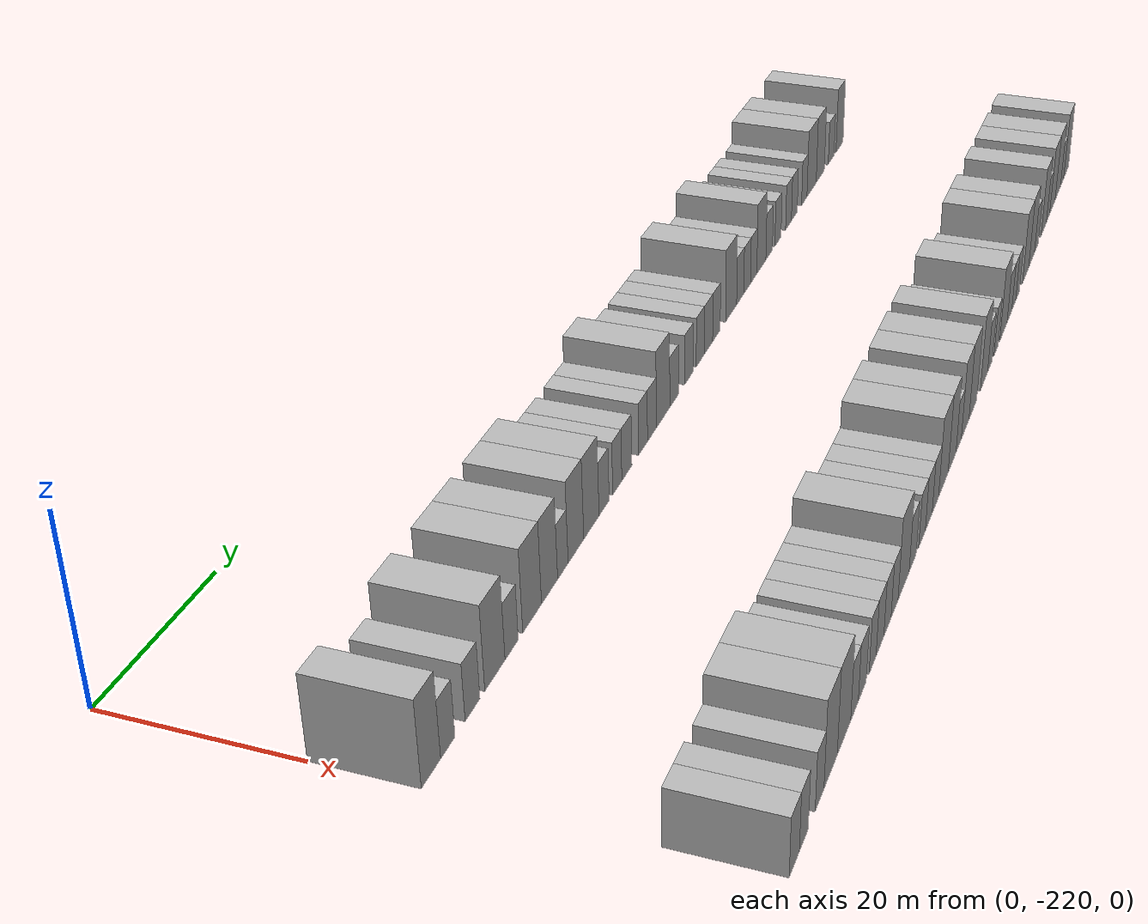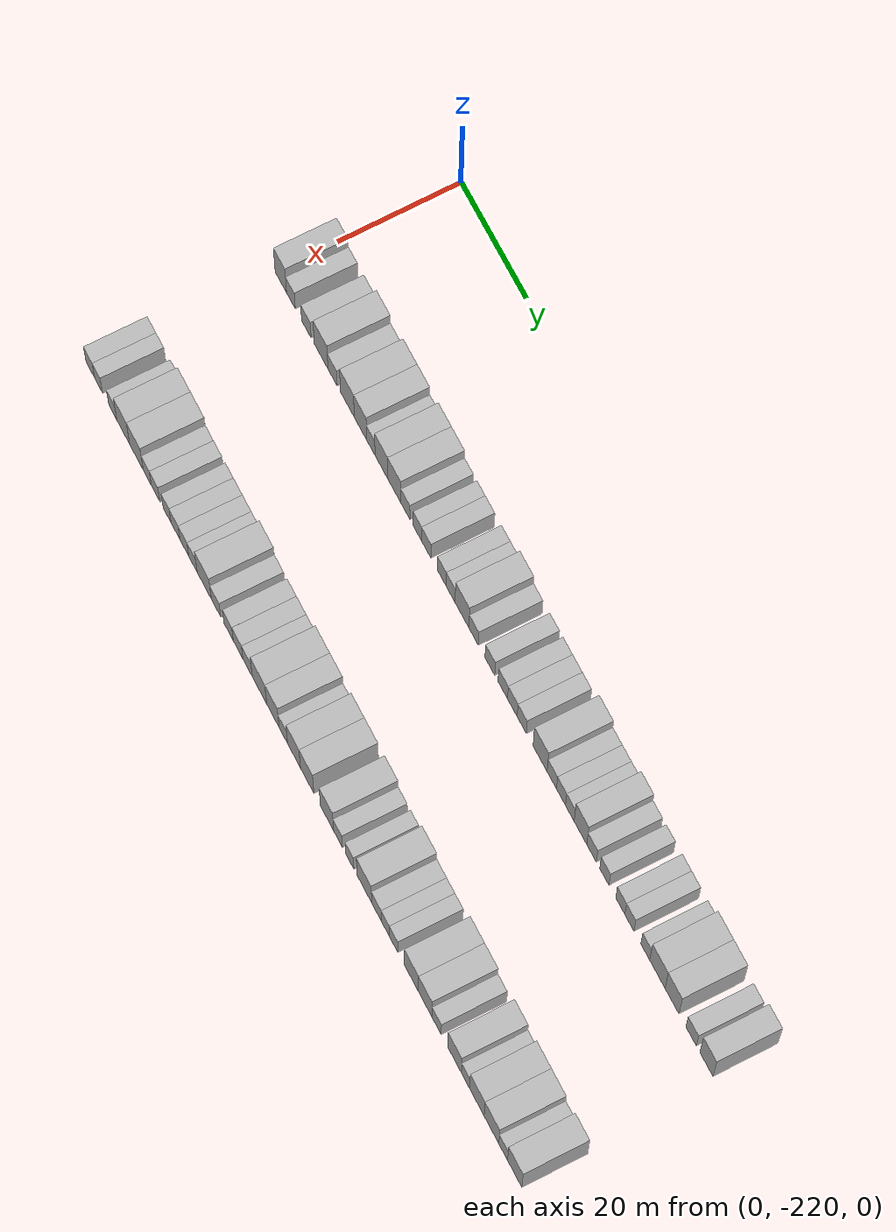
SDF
<sdf version="1.6">
 <world name="default">
  <model name="building_1">
   <static>1</static>
   <pose>25.0000 -218.1999 0 0.000000 0.000000 0.000000</pose>
   <link name="link">
    <pose>0 0 4.50 0 0 0</pose>
    <collision name="collision"><geometry><box><size>10.0000 3.6002 9.0000</size></box></geometry></collision>
    <visual name="visual">
     <cast_shadows>0</cast_shadows>
     <geometry><box><size>10.0000 3.6002 9.0000</size></box></geometry>
     <material>
      <script>
       <uri>model://HANNAS_wall/materials/scripts</uri>
       <uri>model://HANNAS_wall/materials/textures</uri>
       <name>vrc/HANNAS_wall</name>
      </script>
     </material>
    </visual>
   </link>
  </model>
  <model name="building_2">
   <static>1</static>
   <pose>25.0000 -215.0210 0 0.000000 0.000000 0.000000</pose>
   <link name="link">
    <pose>0 0 3.00 0 0 0</pose>
    <collision name="collision"><geometry><box><size>10.0000 2.7577 6.0000</size></box></geometry></collision>
    <visual name="visual">
     <cast_shadows>0</cast_shadows>
     <geometry><box><size>10.0000 2.7577 6.0000</size></box></geometry>
     <material>
      <script>
       <uri>model://HANNAS_wall/materials/scripts</uri>
       <uri>model://HANNAS_wall/materials/textures</uri>
       <name>vrc/HANNAS_wall</name>
      </script>
     </material>
    </visual>
   </link>
  </model>
  <model name="building_3">
   <static>1</static>
   <pose>25.0000 -210.1481 0 0.000000 0.000000 0.000000</pose>
   <link name="link">
    <pose>0 0 3.00 0 0 0</pose>
    <collision name="collision"><geometry><box><size>10.0000 2.9882 6.0000</size></box></geometry></collision>
    <visual name="visual">
     <cast_shadows>0</cast_shadows>
     <geometry><box><size>10.0000 2.9882 6.0000</size></box></geometry>
     <material>
      <script>
       <uri>model://HANNAS_wall/materials/scripts</uri>
       <uri>model://HANNAS_wall/materials/textures</uri>
       <name>vrc/HANNAS_wall</name>
      </script>
     </material>
    </visual>
   </link>
  </model>
  <model name="building_4">
   <static>1</static>
   <pose>25.0000 -205.5099 0 0.000000 0.000000 0.000000</pose>
   <link name="link">
    <pose>0 0 4.50 0 0 0</pose>
    <collision name="collision"><geometry><box><size>10.0000 4.2882 9.0000</size></box></geometry></collision>
    <visual name="visual">
     <cast_shadows>0</cast_shadows>
     <geometry><box><size>10.0000 4.2882 9.0000</size></box></geometry>
     <material>
      <script>
       <uri>model://HANNAS_wall/materials/scripts</uri>
       <uri>model://HANNAS_wall/materials/textures</uri>
       <name>vrc/HANNAS_wall</name>
      </script>
     </material>
    </visual>
   </link>
  </model>
  <model name="building_5">
   <static>1</static>
   <pose>25.0000 -201.9123 0 0.000000 0.000000 0.000000</pose>
   <link name="link">
    <pose>0 0 3.00 0 0 0</pose>
    <collision name="collision"><geometry><box><size>10.0000 2.9070 6.0000</size></box></geometry></collision>
    <visual name="visual">
     <cast_shadows>0</cast_shadows>
     <geometry><box><size>10.0000 2.9070 6.0000</size></box></geometry>
     <material>
      <script>
       <uri>model://HANNAS_wall/materials/scripts</uri>
       <uri>model://HANNAS_wall/materials/textures</uri>
       <name>vrc/HANNAS_wall</name>
      </script>
     </material>
    </visual>
   </link>
  </model>
  <model name="building_6">
   <static>1</static>
   <pose>25.0000 -197.2956 0 0.000000 0.000000 0.000000</pose>
   <link name="link">
    <pose>0 0 4.50 0 0 0</pose>
    <collision name="collision"><geometry><box><size>10.0000 4.3263 9.0000</size></box></geometry></collision>
    <visual name="visual">
     <cast_shadows>0</cast_shadows>
     <geometry><box><size>10.0000 4.3263 9.0000</size></box></geometry>
     <material>
      <script>
       <uri>model://HANNAS_wall/materials/scripts</uri>
       <uri>model://HANNAS_wall/materials/textures</uri>
       <name>vrc/HANNAS_wall</name>
      </script>
     </material>
    </visual>
   </link>
  </model>
  <model name="building_7">
   <static>1</static>
   <pose>25.0000 -193.2080 0 0.000000 0.000000 0.000000</pose>
   <link name="link">
    <pose>0 0 4.50 0 0 0</pose>
    <collision name="collision"><geometry><box><size>10.0000 3.8490 9.0000</size></box></geometry></collision>
    <visual name="visual">
     <cast_shadows>0</cast_shadows>
     <geometry><box><size>10.0000 3.8490 9.0000</size></box></geometry>
     <material>
      <script>
       <uri>model://HANNAS_wall/materials/scripts</uri>
       <uri>model://HANNAS_wall/materials/textures</uri>
       <name>vrc/HANNAS_wall</name>
      </script>
     </material>
    </visual>
   </link>
  </model>
  <model name="building_8">
   <static>1</static>
   <pose>25.0000 -189.9896 0 0.000000 0.000000 0.000000</pose>
   <link name="link">
    <pose>0 0 3.00 0 0 0</pose>
    <collision name="collision"><geometry><box><size>10.0000 2.5877 6.0000</size></box></geometry></collision>
    <visual name="visual">
     <cast_shadows>0</cast_shadows>
     <geometry><box><size>10.0000 2.5877 6.0000</size></box></geometry>
     <material>
      <script>
       <uri>model://HANNAS_wall/materials/scripts</uri>
       <uri>model://HANNAS_wall/materials/textures</uri>
       <name>vrc/HANNAS_wall</name>
      </script>
     </material>
    </visual>
   </link>
  </model>
  <model name="building_9">
   <static>1</static>
   <pose>25.0000 -186.7082 0 0.000000 0.000000 0.000000</pose>
   <link name="link">
    <pose>0 0 4.50 0 0 0</pose>
    <collision name="collision"><geometry><box><size>10.0000 3.9751 9.0000</size></box></geometry></collision>
    <visual name="visual">
     <cast_shadows>0</cast_shadows>
     <geometry><box><size>10.0000 3.9751 9.0000</size></box></geometry>
     <material>
      <script>
       <uri>model://HANNAS_wall/materials/scripts</uri>
       <uri>model://HANNAS_wall/materials/textures</uri>
       <name>vrc/HANNAS_wall</name>
      </script>
     </material>
    </visual>
   </link>
  </model>
  <model name="building_10">
   <static>1</static>
   <pose>25.0000 -182.7124 0 0.000000 0.000000 0.000000</pose>
   <link name="link">
    <pose>0 0 4.50 0 0 0</pose>
    <collision name="collision"><geometry><box><size>10.0000 4.0163 9.0000</size></box></geometry></collision>
    <visual name="visual">
     <cast_shadows>0</cast_shadows>
     <geometry><box><size>10.0000 4.0163 9.0000</size></box></geometry>
     <material>
      <script>
       <uri>model://HANNAS_wall/materials/scripts</uri>
       <uri>model://HANNAS_wall/materials/textures</uri>
       <name>vrc/HANNAS_wall</name>
      </script>
     </material>
    </visual>
   </link>
  </model>
  <model name="building_11">
   <static>1</static>
   <pose>25.0000 -179.3322 0 0.000000 0.000000 0.000000</pose>
   <link name="link">
    <pose>0 0 3.00 0 0 0</pose>
    <collision name="collision"><geometry><box><size>10.0000 2.7441 6.0000</size></box></geometry></collision>
    <visual name="visual">
     <cast_shadows>0</cast_shadows>
     <geometry><box><size>10.0000 2.7441 6.0000</size></box></geometry>
     <material>
      <script>
       <uri>model://HANNAS_wall/materials/scripts</uri>
       <uri>model://HANNAS_wall/materials/textures</uri>
       <name>vrc/HANNAS_wall</name>
      </script>
     </material>
    </visual>
   </link>
  </model>
  <model name="building_12">
   <static>1</static>
   <pose>25.0000 -175.6917 0 0.000000 0.000000 0.000000</pose>
   <link name="link">
    <pose>0 0 3.00 0 0 0</pose>
    <collision name="collision"><geometry><box><size>10.0000 2.5370 6.0000</size></box></geometry></collision>
    <visual name="visual">
     <cast_shadows>0</cast_shadows>
     <geometry><box><size>10.0000 2.5370 6.0000</size></box></geometry>
     <material>
      <script>
       <uri>model://HANNAS_wall/materials/scripts</uri>
       <uri>model://HANNAS_wall/materials/textures</uri>
       <name>vrc/HANNAS_wall</name>
      </script>
     </material>
    </visual>
   </link>
  </model>
  <model name="building_13">
   <static>1</static>
   <pose>25.0000 -172.9795 0 0.000000 0.000000 0.000000</pose>
   <link name="link">
    <pose>0 0 3.00 0 0 0</pose>
    <collision name="collision"><geometry><box><size>10.0000 2.8872 6.0000</size></box></geometry></collision>
    <visual name="visual">
     <cast_shadows>0</cast_shadows>
     <geometry><box><size>10.0000 2.8872 6.0000</size></box></geometry>
     <material>
      <script>
       <uri>model://HANNAS_wall/materials/scripts</uri>
       <uri>model://HANNAS_wall/materials/textures</uri>
       <name>vrc/HANNAS_wall</name>
      </script>
     </material>
    </visual>
   </link>
  </model>
  <model name="building_14">
   <static>1</static>
   <pose>25.0000 -168.2196 0 0.000000 0.000000 0.000000</pose>
   <link name="link">
    <pose>0 0 3.00 0 0 0</pose>
    <collision name="collision"><geometry><box><size>10.0000 2.6327 6.0000</size></box></geometry></collision>
    <visual name="visual">
     <cast_shadows>0</cast_shadows>
     <geometry><box><size>10.0000 2.6327 6.0000</size></box></geometry>
     <material>
      <script>
       <uri>model://HANNAS_wall/materials/scripts</uri>
       <uri>model://HANNAS_wall/materials/textures</uri>
       <name>vrc/HANNAS_wall</name>
      </script>
     </material>
    </visual>
   </link>
  </model>
  <model name="building_15">
   <static>1</static>
   <pose>25.0000 -165.5320 0 0.000000 0.000000 0.000000</pose>
   <link name="link">
    <pose>0 0 3.00 0 0 0</pose>
    <collision name="collision"><geometry><box><size>10.0000 2.7424 6.0000</size></box></geometry></collision>
    <visual name="visual">
     <cast_shadows>0</cast_shadows>
     <geometry><box><size>10.0000 2.7424 6.0000</size></box></geometry>
     <material>
      <script>
       <uri>model://HANNAS_wall/materials/scripts</uri>
       <uri>model://HANNAS_wall/materials/textures</uri>
       <name>vrc/HANNAS_wall</name>
      </script>
     </material>
    </visual>
   </link>
  </model>
  <model name="building_16">
   <static>1</static>
   <pose>25.0000 -162.0608 0 0.000000 0.000000 0.000000</pose>
   <link name="link">
    <pose>0 0 4.50 0 0 0</pose>
    <collision name="collision"><geometry><box><size>10.0000 4.2000 9.0000</size></box></geometry></collision>
    <visual name="visual">
     <cast_shadows>0</cast_shadows>
     <geometry><box><size>10.0000 4.2000 9.0000</size></box></geometry>
     <material>
      <script>
       <uri>model://HANNAS_wall/materials/scripts</uri>
       <uri>model://HANNAS_wall/materials/textures</uri>
       <name>vrc/HANNAS_wall</name>
      </script>
     </material>
    </visual>
   </link>
  </model>
  <model name="building_17">
   <static>1</static>
   <pose>25.0000 -158.5487 0 0.000000 0.000000 0.000000</pose>
   <link name="link">
    <pose>0 0 3.00 0 0 0</pose>
    <collision name="collision"><geometry><box><size>10.0000 2.8243 6.0000</size></box></geometry></collision>
    <visual name="visual">
     <cast_shadows>0</cast_shadows>
     <geometry><box><size>10.0000 2.8243 6.0000</size></box></geometry>
     <material>
      <script>
       <uri>model://HANNAS_wall/materials/scripts</uri>
       <uri>model://HANNAS_wall/materials/textures</uri>
       <name>vrc/HANNAS_wall</name>
      </script>
     </material>
    </visual>
   </link>
  </model>
  <model name="building_18">
   <static>1</static>
   <pose>25.0000 -153.6784 0 0.000000 0.000000 0.000000</pose>
   <link name="link">
    <pose>0 0 3.00 0 0 0</pose>
    <collision name="collision"><geometry><box><size>10.0000 2.9164 6.0000</size></box></geometry></collision>
    <visual name="visual">
     <cast_shadows>0</cast_shadows>
     <geometry><box><size>10.0000 2.9164 6.0000</size></box></geometry>
     <material>
      <script>
       <uri>model://HANNAS_wall/materials/scripts</uri>
       <uri>model://HANNAS_wall/materials/textures</uri>
       <name>vrc/HANNAS_wall</name>
      </script>
     </material>
    </visual>
   </link>
  </model>
  <model name="building_19">
   <static>1</static>
   <pose>25.0000 -149.7978 0 0.000000 0.000000 0.000000</pose>
   <link name="link">
    <pose>0 0 3.00 0 0 0</pose>
    <collision name="collision"><geometry><box><size>10.0000 2.8447 6.0000</size></box></geometry></collision>
    <visual name="visual">
     <cast_shadows>0</cast_shadows>
     <geometry><box><size>10.0000 2.8447 6.0000</size></box></geometry>
     <material>
      <script>
       <uri>model://HANNAS_wall/materials/scripts</uri>
       <uri>model://HANNAS_wall/materials/textures</uri>
       <name>vrc/HANNAS_wall</name>
      </script>
     </material>
    </visual>
   </link>
  </model>
  <model name="building_20">
   <static>1</static>
   <pose>25.0000 -146.9316 0 0.000000 0.000000 0.000000</pose>
   <link name="link">
    <pose>0 0 3.00 0 0 0</pose>
    <collision name="collision"><geometry><box><size>10.0000 2.8878 6.0000</size></box></geometry></collision>
    <visual name="visual">
     <cast_shadows>0</cast_shadows>
     <geometry><box><size>10.0000 2.8878 6.0000</size></box></geometry>
     <material>
      <script>
       <uri>model://HANNAS_wall/materials/scripts</uri>
       <uri>model://HANNAS_wall/materials/textures</uri>
       <name>vrc/HANNAS_wall</name>
      </script>
     </material>
    </visual>
   </link>
  </model>
  <model name="building_21">
   <static>1</static>
   <pose>25.0000 -144.1135 0 0.000000 0.000000 0.000000</pose>
   <link name="link">
    <pose>0 0 3.00 0 0 0</pose>
    <collision name="collision"><geometry><box><size>10.0000 2.7484 6.0000</size></box></geometry></collision>
    <visual name="visual">
     <cast_shadows>0</cast_shadows>
     <geometry><box><size>10.0000 2.7484 6.0000</size></box></geometry>
     <material>
      <script>
       <uri>model://HANNAS_wall/materials/scripts</uri>
       <uri>model://HANNAS_wall/materials/textures</uri>
       <name>vrc/HANNAS_wall</name>
      </script>
     </material>
    </visual>
   </link>
  </model>
  <model name="building_22">
   <static>1</static>
   <pose>25.0000 -138.6592 0 0.000000 0.000000 0.000000</pose>
   <link name="link">
    <pose>0 0 4.50 0 0 0</pose>
    <collision name="collision"><geometry><box><size>10.0000 4.1602 9.0000</size></box></geometry></collision>
    <visual name="visual">
     <cast_shadows>0</cast_shadows>
     <geometry><box><size>10.0000 4.1602 9.0000</size></box></geometry>
     <material>
      <script>
       <uri>model://HANNAS_wall/materials/scripts</uri>
       <uri>model://HANNAS_wall/materials/textures</uri>
       <name>vrc/HANNAS_wall</name>
      </script>
     </material>
    </visual>
   </link>
  </model>
  <model name="building_23">
   <static>1</static>
   <pose>25.0000 -135.1899 0 0.000000 0.000000 0.000000</pose>
   <link name="link">
    <pose>0 0 3.00 0 0 0</pose>
    <collision name="collision"><geometry><box><size>10.0000 2.7784 6.0000</size></box></geometry></collision>
    <visual name="visual">
     <cast_shadows>0</cast_shadows>
     <geometry><box><size>10.0000 2.7784 6.0000</size></box></geometry>
     <material>
      <script>
       <uri>model://HANNAS_wall/materials/scripts</uri>
       <uri>model://HANNAS_wall/materials/textures</uri>
       <name>vrc/HANNAS_wall</name>
      </script>
     </material>
    </visual>
   </link>
  </model>
  <model name="building_24">
   <static>1</static>
   <pose>25.0000 -132.4624 0 0.000000 0.000000 0.000000</pose>
   <link name="link">
    <pose>0 0 3.00 0 0 0</pose>
    <collision name="collision"><geometry><box><size>10.0000 2.6766 6.0000</size></box></geometry></collision>
    <visual name="visual">
     <cast_shadows>0</cast_shadows>
     <geometry><box><size>10.0000 2.6766 6.0000</size></box></geometry>
     <material>
      <script>
       <uri>model://HANNAS_wall/materials/scripts</uri>
       <uri>model://HANNAS_wall/materials/textures</uri>
       <name>vrc/HANNAS_wall</name>
      </script>
     </material>
    </visual>
   </link>
  </model>
  <model name="building_25">
   <static>1</static>
   <pose>25.0000 -129.8567 0 0.000000 0.000000 0.000000</pose>
   <link name="link">
    <pose>0 0 3.00 0 0 0</pose>
    <collision name="collision"><geometry><box><size>10.0000 2.5349 6.0000</size></box></geometry></collision>
    <visual name="visual">
     <cast_shadows>0</cast_shadows>
     <geometry><box><size>10.0000 2.5349 6.0000</size></box></geometry>
     <material>
      <script>
       <uri>model://HANNAS_wall/materials/scripts</uri>
       <uri>model://HANNAS_wall/materials/textures</uri>
       <name>vrc/HANNAS_wall</name>
      </script>
     </material>
    </visual>
   </link>
  </model>
  <model name="building_26">
   <static>1</static>
   <pose>25.0000 -126.7291 0 0.000000 0.000000 0.000000</pose>
   <link name="link">
    <pose>0 0 4.50 0 0 0</pose>
    <collision name="collision"><geometry><box><size>10.0000 3.7203 9.0000</size></box></geometry></collision>
    <visual name="visual">
     <cast_shadows>0</cast_shadows>
     <geometry><box><size>10.0000 3.7203 9.0000</size></box></geometry>
     <material>
      <script>
       <uri>model://HANNAS_wall/materials/scripts</uri>
       <uri>model://HANNAS_wall/materials/textures</uri>
       <name>vrc/HANNAS_wall</name>
      </script>
     </material>
    </visual>
   </link>
  </model>
  <model name="building_27">
   <static>1</static>
   <pose>25.0000 -123.4725 0 0.000000 0.000000 0.000000</pose>
   <link name="link">
    <pose>0 0 3.00 0 0 0</pose>
    <collision name="collision"><geometry><box><size>10.0000 2.7929 6.0000</size></box></geometry></collision>
    <visual name="visual">
     <cast_shadows>0</cast_shadows>
     <geometry><box><size>10.0000 2.7929 6.0000</size></box></geometry>
     <material>
      <script>
       <uri>model://HANNAS_wall/materials/scripts</uri>
       <uri>model://HANNAS_wall/materials/textures</uri>
       <name>vrc/HANNAS_wall</name>
      </script>
     </material>
    </visual>
   </link>
  </model>
  <model name="building_28">
   <static>1</static>
   <pose>25.0000 -119.7247 0 0.000000 0.000000 0.000000</pose>
   <link name="link">
    <pose>0 0 3.00 0 0 0</pose>
    <collision name="collision"><geometry><box><size>10.0000 2.7026 6.0000</size></box></geometry></collision>
    <visual name="visual">
     <cast_shadows>0</cast_shadows>
     <geometry><box><size>10.0000 2.7026 6.0000</size></box></geometry>
     <material>
      <script>
       <uri>model://HANNAS_wall/materials/scripts</uri>
       <uri>model://HANNAS_wall/materials/textures</uri>
       <name>vrc/HANNAS_wall</name>
      </script>
     </material>
    </visual>
   </link>
  </model>
  <model name="building_29">
   <static>1</static>
   <pose>25.0000 -115.0625 0 0.000000 0.000000 0.000000</pose>
   <link name="link">
    <pose>0 0 3.00 0 0 0</pose>
    <collision name="collision"><geometry><box><size>10.0000 2.6219 6.0000</size></box></geometry></collision>
    <visual name="visual">
     <cast_shadows>0</cast_shadows>
     <geometry><box><size>10.0000 2.6219 6.0000</size></box></geometry>
     <material>
      <script>
       <uri>model://HANNAS_wall/materials/scripts</uri>
       <uri>model://HANNAS_wall/materials/textures</uri>
       <name>vrc/HANNAS_wall</name>
      </script>
     </material>
    </visual>
   </link>
  </model>
  <model name="building_30">
   <static>1</static>
   <pose>25.0000 -112.4210 0 0.000000 0.000000 0.000000</pose>
   <link name="link">
    <pose>0 0 3.00 0 0 0</pose>
    <collision name="collision"><geometry><box><size>10.0000 2.6610 6.0000</size></box></geometry></collision>
    <visual name="visual">
     <cast_shadows>0</cast_shadows>
     <geometry><box><size>10.0000 2.6610 6.0000</size></box></geometry>
     <material>
      <script>
       <uri>model://HANNAS_wall/materials/scripts</uri>
       <uri>model://HANNAS_wall/materials/textures</uri>
       <name>vrc/HANNAS_wall</name>
      </script>
     </material>
    </visual>
   </link>
  </model>
  <model name="building_31">
   <static>1</static>
   <pose>25.0000 -107.8168 0 0.000000 0.000000 0.000000</pose>
   <link name="link">
    <pose>0 0 3.00 0 0 0</pose>
    <collision name="collision"><geometry><box><size>10.0000 2.5475 6.0000</size></box></geometry></collision>
    <visual name="visual">
     <cast_shadows>0</cast_shadows>
     <geometry><box><size>10.0000 2.5475 6.0000</size></box></geometry>
     <material>
      <script>
       <uri>model://HANNAS_wall/materials/scripts</uri>
       <uri>model://HANNAS_wall/materials/textures</uri>
       <name>vrc/HANNAS_wall</name>
      </script>
     </material>
    </visual>
   </link>
  </model>
  <model name="building_32">
   <static>1</static>
   <pose>25.0000 -104.3199 0 0.000000 0.000000 0.000000</pose>
   <link name="link">
    <pose>0 0 4.50 0 0 0</pose>
    <collision name="collision"><geometry><box><size>10.0000 4.4463 9.0000</size></box></geometry></collision>
    <visual name="visual">
     <cast_shadows>0</cast_shadows>
     <geometry><box><size>10.0000 4.4463 9.0000</size></box></geometry>
     <material>
      <script>
       <uri>model://HANNAS_wall/materials/scripts</uri>
       <uri>model://HANNAS_wall/materials/textures</uri>
       <name>vrc/HANNAS_wall</name>
      </script>
     </material>
    </visual>
   </link>
  </model>
  <model name="building_33">
   <static>1</static>
   <pose>25.0000 -100.0908 0 0.000000 0.000000 0.000000</pose>
   <link name="link">
    <pose>0 0 4.50 0 0 0</pose>
    <collision name="collision"><geometry><box><size>10.0000 4.0121 9.0000</size></box></geometry></collision>
    <visual name="visual">
     <cast_shadows>0</cast_shadows>
     <geometry><box><size>10.0000 4.0121 9.0000</size></box></geometry>
     <material>
      <script>
       <uri>model://HANNAS_wall/materials/scripts</uri>
       <uri>model://HANNAS_wall/materials/textures</uri>
       <name>vrc/HANNAS_wall</name>
      </script>
     </material>
    </visual>
   </link>
  </model>
  <model name="building_34">
   <static>1</static>
   <pose>25.0000 -94.5969 0 0.000000 0.000000 0.000000</pose>
   <link name="link">
    <pose>0 0 3.00 0 0 0</pose>
    <collision name="collision"><geometry><box><size>10.0000 2.9756 6.0000</size></box></geometry></collision>
    <visual name="visual">
     <cast_shadows>0</cast_shadows>
     <geometry><box><size>10.0000 2.9756 6.0000</size></box></geometry>
     <material>
      <script>
       <uri>model://HANNAS_wall/materials/scripts</uri>
       <uri>model://HANNAS_wall/materials/textures</uri>
       <name>vrc/HANNAS_wall</name>
      </script>
     </material>
    </visual>
   </link>
  </model>
  <model name="building_35">
   <static>1</static>
   <pose>25.0000 -90.2380 0 0.000000 0.000000 0.000000</pose>
   <link name="link">
    <pose>0 0 4.50 0 0 0</pose>
    <collision name="collision"><geometry><box><size>10.0000 3.7423 9.0000</size></box></geometry></collision>
    <visual name="visual">
     <cast_shadows>0</cast_shadows>
     <geometry><box><size>10.0000 3.7423 9.0000</size></box></geometry>
     <material>
      <script>
       <uri>model://HANNAS_wall/materials/scripts</uri>
       <uri>model://HANNAS_wall/materials/textures</uri>
       <name>vrc/HANNAS_wall</name>
      </script>
     </material>
    </visual>
   </link>
  </model>
  <model name="building_112">
   <static>1</static>
   <pose>55.0000 -218.6086 0 0.000000 0.000000 0.000000</pose>
   <link name="link">
    <pose>0 0 3.00 0 0 0</pose>
    <collision name="collision"><geometry><box><size>10.0000 2.7829 6.0000</size></box></geometry></collision>
    <visual name="visual">
     <cast_shadows>0</cast_shadows>
     <geometry><box><size>10.0000 2.7829 6.0000</size></box></geometry>
     <material>
      <script>
       <uri>model://HANNAS_wall/materials/scripts</uri>
       <uri>model://HANNAS_wall/materials/textures</uri>
       <name>vrc/HANNAS_wall</name>
      </script>
     </material>
    </visual>
   </link>
  </model>
  <model name="building_113">
   <static>1</static>
   <pose>55.0000 -215.9484 0 0.000000 0.000000 0.000000</pose>
   <link name="link">
    <pose>0 0 3.00 0 0 0</pose>
    <collision name="collision"><geometry><box><size>10.0000 2.5374 6.0000</size></box></geometry></collision>
    <visual name="visual">
     <cast_shadows>0</cast_shadows>
     <geometry><box><size>10.0000 2.5374 6.0000</size></box></geometry>
     <material>
      <script>
       <uri>model://HANNAS_wall/materials/scripts</uri>
       <uri>model://HANNAS_wall/materials/textures</uri>
       <name>vrc/HANNAS_wall</name>
      </script>
     </material>
    </visual>
   </link>
  </model>
  <model name="building_114">
   <static>1</static>
   <pose>55.0000 -211.3727 0 0.000000 0.000000 0.000000</pose>
   <link name="link">
    <pose>0 0 3.00 0 0 0</pose>
    <collision name="collision"><geometry><box><size>10.0000 2.6140 6.0000</size></box></geometry></collision>
    <visual name="visual">
     <cast_shadows>0</cast_shadows>
     <geometry><box><size>10.0000 2.6140 6.0000</size></box></geometry>
     <material>
      <script>
       <uri>model://HANNAS_wall/materials/scripts</uri>
       <uri>model://HANNAS_wall/materials/textures</uri>
       <name>vrc/HANNAS_wall</name>
      </script>
     </material>
    </visual>
   </link>
  </model>
  <model name="building_115">
   <static>1</static>
   <pose>55.0000 -208.0121 0 0.000000 0.000000 0.000000</pose>
   <link name="link">
    <pose>0 0 4.50 0 0 0</pose>
    <collision name="collision"><geometry><box><size>10.0000 4.1070 9.0000</size></box></geometry></collision>
    <visual name="visual">
     <cast_shadows>0</cast_shadows>
     <geometry><box><size>10.0000 4.1070 9.0000</size></box></geometry>
     <material>
      <script>
       <uri>model://HANNAS_wall/materials/scripts</uri>
       <uri>model://HANNAS_wall/materials/textures</uri>
       <name>vrc/HANNAS_wall</name>
      </script>
     </material>
    </visual>
   </link>
  </model>
  <model name="building_116">
   <static>1</static>
   <pose>55.0000 -203.7950 0 0.000000 0.000000 0.000000</pose>
   <link name="link">
    <pose>0 0 4.50 0 0 0</pose>
    <collision name="collision"><geometry><box><size>10.0000 4.3272 9.0000</size></box></geometry></collision>
    <visual name="visual">
     <cast_shadows>0</cast_shadows>
     <geometry><box><size>10.0000 4.3272 9.0000</size></box></geometry>
     <material>
      <script>
       <uri>model://HANNAS_wall/materials/scripts</uri>
       <uri>model://HANNAS_wall/materials/textures</uri>
       <name>vrc/HANNAS_wall</name>
      </script>
     </material>
    </visual>
   </link>
  </model>
  <model name="building_117">
   <static>1</static>
   <pose>55.0000 -200.3542 0 0.000000 0.000000 0.000000</pose>
   <link name="link">
    <pose>0 0 3.00 0 0 0</pose>
    <collision name="collision"><geometry><box><size>10.0000 2.5543 6.0000</size></box></geometry></collision>
    <visual name="visual">
     <cast_shadows>0</cast_shadows>
     <geometry><box><size>10.0000 2.5543 6.0000</size></box></geometry>
     <material>
      <script>
       <uri>model://HANNAS_wall/materials/scripts</uri>
       <uri>model://HANNAS_wall/materials/textures</uri>
       <name>vrc/HANNAS_wall</name>
      </script>
     </material>
    </visual>
   </link>
  </model>
  <model name="building_118">
   <static>1</static>
   <pose>55.0000 -197.7134 0 0.000000 0.000000 0.000000</pose>
   <link name="link">
    <pose>0 0 3.00 0 0 0</pose>
    <collision name="collision"><geometry><box><size>10.0000 2.7274 6.0000</size></box></geometry></collision>
    <visual name="visual">
     <cast_shadows>0</cast_shadows>
     <geometry><box><size>10.0000 2.7274 6.0000</size></box></geometry>
     <material>
      <script>
       <uri>model://HANNAS_wall/materials/scripts</uri>
       <uri>model://HANNAS_wall/materials/textures</uri>
       <name>vrc/HANNAS_wall</name>
      </script>
     </material>
    </visual>
   </link>
  </model>
  <model name="building_119">
   <static>1</static>
   <pose>55.0000 -194.1042 0 0.000000 0.000000 0.000000</pose>
   <link name="link">
    <pose>0 0 3.00 0 0 0</pose>
    <collision name="collision"><geometry><box><size>10.0000 2.4909 6.0000</size></box></geometry></collision>
    <visual name="visual">
     <cast_shadows>0</cast_shadows>
     <geometry><box><size>10.0000 2.4909 6.0000</size></box></geometry>
     <material>
      <script>
       <uri>model://HANNAS_wall/materials/scripts</uri>
       <uri>model://HANNAS_wall/materials/textures</uri>
       <name>vrc/HANNAS_wall</name>
      </script>
     </material>
    </visual>
   </link>
  </model>
  <model name="building_120">
   <static>1</static>
   <pose>55.0000 -191.4418 0 0.000000 0.000000 0.000000</pose>
   <link name="link">
    <pose>0 0 3.00 0 0 0</pose>
    <collision name="collision"><geometry><box><size>10.0000 2.8339 6.0000</size></box></geometry></collision>
    <visual name="visual">
     <cast_shadows>0</cast_shadows>
     <geometry><box><size>10.0000 2.8339 6.0000</size></box></geometry>
     <material>
      <script>
       <uri>model://HANNAS_wall/materials/scripts</uri>
       <uri>model://HANNAS_wall/materials/textures</uri>
       <name>vrc/HANNAS_wall</name>
      </script>
     </material>
    </visual>
   </link>
  </model>
  <model name="building_121">
   <static>1</static>
   <pose>55.0000 -188.6558 0 0.000000 0.000000 0.000000</pose>
   <link name="link">
    <pose>0 0 3.00 0 0 0</pose>
    <collision name="collision"><geometry><box><size>10.0000 2.7382 6.0000</size></box></geometry></collision>
    <visual name="visual">
     <cast_shadows>0</cast_shadows>
     <geometry><box><size>10.0000 2.7382 6.0000</size></box></geometry>
     <material>
      <script>
       <uri>model://HANNAS_wall/materials/scripts</uri>
       <uri>model://HANNAS_wall/materials/textures</uri>
       <name>vrc/HANNAS_wall</name>
      </script>
     </material>
    </visual>
   </link>
  </model>
  <model name="building_122">
   <static>1</static>
   <pose>55.0000 -185.9473 0 0.000000 0.000000 0.000000</pose>
   <link name="link">
    <pose>0 0 3.00 0 0 0</pose>
    <collision name="collision"><geometry><box><size>10.0000 2.6787 6.0000</size></box></geometry></collision>
    <visual name="visual">
     <cast_shadows>0</cast_shadows>
     <geometry><box><size>10.0000 2.6787 6.0000</size></box></geometry>
     <material>
      <script>
       <uri>model://HANNAS_wall/materials/scripts</uri>
       <uri>model://HANNAS_wall/materials/textures</uri>
       <name>vrc/HANNAS_wall</name>
      </script>
     </material>
    </visual>
   </link>
  </model>
  <model name="building_123">
   <static>1</static>
   <pose>55.0000 -182.3789 0 0.000000 0.000000 0.000000</pose>
   <link name="link">
    <pose>0 0 4.50 0 0 0</pose>
    <collision name="collision"><geometry><box><size>10.0000 4.4581 9.0000</size></box></geometry></collision>
    <visual name="visual">
     <cast_shadows>0</cast_shadows>
     <geometry><box><size>10.0000 4.4581 9.0000</size></box></geometry>
     <material>
      <script>
       <uri>model://HANNAS_wall/materials/scripts</uri>
       <uri>model://HANNAS_wall/materials/textures</uri>
       <name>vrc/HANNAS_wall</name>
      </script>
     </material>
    </visual>
   </link>
  </model>
  <model name="building_124">
   <static>1</static>
   <pose>55.0000 -178.6996 0 0.000000 0.000000 0.000000</pose>
   <link name="link">
    <pose>0 0 3.00 0 0 0</pose>
    <collision name="collision"><geometry><box><size>10.0000 2.9005 6.0000</size></box></geometry></collision>
    <visual name="visual">
     <cast_shadows>0</cast_shadows>
     <geometry><box><size>10.0000 2.9005 6.0000</size></box></geometry>
     <material>
      <script>
       <uri>model://HANNAS_wall/materials/scripts</uri>
       <uri>model://HANNAS_wall/materials/textures</uri>
       <name>vrc/HANNAS_wall</name>
      </script>
     </material>
    </visual>
   </link>
  </model>
  <model name="building_125">
   <static>1</static>
   <pose>55.0000 -174.7907 0 0.000000 0.000000 0.000000</pose>
   <link name="link">
    <pose>0 0 3.00 0 0 0</pose>
    <collision name="collision"><geometry><box><size>10.0000 2.9173 6.0000</size></box></geometry></collision>
    <visual name="visual">
     <cast_shadows>0</cast_shadows>
     <geometry><box><size>10.0000 2.9173 6.0000</size></box></geometry>
     <material>
      <script>
       <uri>model://HANNAS_wall/materials/scripts</uri>
       <uri>model://HANNAS_wall/materials/textures</uri>
       <name>vrc/HANNAS_wall</name>
      </script>
     </material>
    </visual>
   </link>
  </model>
  <model name="building_126">
   <static>1</static>
   <pose>55.0000 -171.8422 0 0.000000 0.000000 0.000000</pose>
   <link name="link">
    <pose>0 0 3.00 0 0 0</pose>
    <collision name="collision"><geometry><box><size>10.0000 2.9795 6.0000</size></box></geometry></collision>
    <visual name="visual">
     <cast_shadows>0</cast_shadows>
     <geometry><box><size>10.0000 2.9795 6.0000</size></box></geometry>
     <material>
      <script>
       <uri>model://HANNAS_wall/materials/scripts</uri>
       <uri>model://HANNAS_wall/materials/textures</uri>
       <name>vrc/HANNAS_wall</name>
      </script>
     </material>
    </visual>
   </link>
  </model>
  <model name="building_127">
   <static>1</static>
   <pose>55.0000 -168.8943 0 0.000000 0.000000 0.000000</pose>
   <link name="link">
    <pose>0 0 3.00 0 0 0</pose>
    <collision name="collision"><geometry><box><size>10.0000 2.9164 6.0000</size></box></geometry></collision>
    <visual name="visual">
     <cast_shadows>0</cast_shadows>
     <geometry><box><size>10.0000 2.9164 6.0000</size></box></geometry>
     <material>
      <script>
       <uri>model://HANNAS_wall/materials/scripts</uri>
       <uri>model://HANNAS_wall/materials/textures</uri>
       <name>vrc/HANNAS_wall</name>
      </script>
     </material>
    </visual>
   </link>
  </model>
  <model name="building_128">
   <static>1</static>
   <pose>55.0000 -165.2141 0 0.000000 0.000000 0.000000</pose>
   <link name="link">
    <pose>0 0 4.50 0 0 0</pose>
    <collision name="collision"><geometry><box><size>10.0000 4.4440 9.0000</size></box></geometry></collision>
    <visual name="visual">
     <cast_shadows>0</cast_shadows>
     <geometry><box><size>10.0000 4.4440 9.0000</size></box></geometry>
     <material>
      <script>
       <uri>model://HANNAS_wall/materials/scripts</uri>
       <uri>model://HANNAS_wall/materials/textures</uri>
       <name>vrc/HANNAS_wall</name>
      </script>
     </material>
    </visual>
   </link>
  </model>
  <model name="building_129">
   <static>1</static>
   <pose>55.0000 -161.0821 0 0.000000 0.000000 0.000000</pose>
   <link name="link">
    <pose>0 0 4.50 0 0 0</pose>
    <collision name="collision"><geometry><box><size>10.0000 3.8199 9.0000</size></box></geometry></collision>
    <visual name="visual">
     <cast_shadows>0</cast_shadows>
     <geometry><box><size>10.0000 3.8199 9.0000</size></box></geometry>
     <material>
      <script>
       <uri>model://HANNAS_wall/materials/scripts</uri>
       <uri>model://HANNAS_wall/materials/textures</uri>
       <name>vrc/HANNAS_wall</name>
      </script>
     </material>
    </visual>
   </link>
  </model>
  <model name="building_130">
   <static>1</static>
   <pose>55.0000 -157.8554 0 0.000000 0.000000 0.000000</pose>
   <link name="link">
    <pose>0 0 3.00 0 0 0</pose>
    <collision name="collision"><geometry><box><size>10.0000 2.6336 6.0000</size></box></geometry></collision>
    <visual name="visual">
     <cast_shadows>0</cast_shadows>
     <geometry><box><size>10.0000 2.6336 6.0000</size></box></geometry>
     <material>
      <script>
       <uri>model://HANNAS_wall/materials/scripts</uri>
       <uri>model://HANNAS_wall/materials/textures</uri>
       <name>vrc/HANNAS_wall</name>
      </script>
     </material>
    </visual>
   </link>
  </model>
  <model name="building_131">
   <static>1</static>
   <pose>55.0000 -154.5761 0 0.000000 0.000000 0.000000</pose>
   <link name="link">
    <pose>0 0 4.50 0 0 0</pose>
    <collision name="collision"><geometry><box><size>10.0000 3.9250 9.0000</size></box></geometry></collision>
    <visual name="visual">
     <cast_shadows>0</cast_shadows>
     <geometry><box><size>10.0000 3.9250 9.0000</size></box></geometry>
     <material>
      <script>
       <uri>model://HANNAS_wall/materials/scripts</uri>
       <uri>model://HANNAS_wall/materials/textures</uri>
       <name>vrc/HANNAS_wall</name>
      </script>
     </material>
    </visual>
   </link>
  </model>
  <model name="building_132">
   <static>1</static>
   <pose>55.0000 -150.5693 0 0.000000 0.000000 0.000000</pose>
   <link name="link">
    <pose>0 0 4.50 0 0 0</pose>
    <collision name="collision"><geometry><box><size>10.0000 4.0886 9.0000</size></box></geometry></collision>
    <visual name="visual">
     <cast_shadows>0</cast_shadows>
     <geometry><box><size>10.0000 4.0886 9.0000</size></box></geometry>
     <material>
      <script>
       <uri>model://HANNAS_wall/materials/scripts</uri>
       <uri>model://HANNAS_wall/materials/textures</uri>
       <name>vrc/HANNAS_wall</name>
      </script>
     </material>
    </visual>
   </link>
  </model>
  <model name="building_133">
   <static>1</static>
   <pose>55.0000 -144.5173 0 0.000000 0.000000 0.000000</pose>
   <link name="link">
    <pose>0 0 4.50 0 0 0</pose>
    <collision name="collision"><geometry><box><size>10.0000 4.0153 9.0000</size></box></geometry></collision>
    <visual name="visual">
     <cast_shadows>0</cast_shadows>
     <geometry><box><size>10.0000 4.0153 9.0000</size></box></geometry>
     <material>
      <script>
       <uri>model://HANNAS_wall/materials/scripts</uri>
       <uri>model://HANNAS_wall/materials/textures</uri>
       <name>vrc/HANNAS_wall</name>
      </script>
     </material>
    </visual>
   </link>
  </model>
  <model name="building_134">
   <static>1</static>
   <pose>55.0000 -141.1686 0 0.000000 0.000000 0.000000</pose>
   <link name="link">
    <pose>0 0 3.00 0 0 0</pose>
    <collision name="collision"><geometry><box><size>10.0000 2.6822 6.0000</size></box></geometry></collision>
    <visual name="visual">
     <cast_shadows>0</cast_shadows>
     <geometry><box><size>10.0000 2.6822 6.0000</size></box></geometry>
     <material>
      <script>
       <uri>model://HANNAS_wall/materials/scripts</uri>
       <uri>model://HANNAS_wall/materials/textures</uri>
       <name>vrc/HANNAS_wall</name>
      </script>
     </material>
    </visual>
   </link>
  </model>
  <model name="building_135">
   <static>1</static>
   <pose>55.0000 -137.6076 0 0.000000 0.000000 0.000000</pose>
   <link name="link">
    <pose>0 0 3.00 0 0 0</pose>
    <collision name="collision"><geometry><box><size>10.0000 2.4399 6.0000</size></box></geometry></collision>
    <visual name="visual">
     <cast_shadows>0</cast_shadows>
     <geometry><box><size>10.0000 2.4399 6.0000</size></box></geometry>
     <material>
      <script>
       <uri>model://HANNAS_wall/materials/scripts</uri>
       <uri>model://HANNAS_wall/materials/textures</uri>
       <name>vrc/HANNAS_wall</name>
      </script>
     </material>
    </visual>
   </link>
  </model>
  <model name="building_136">
   <static>1</static>
   <pose>55.0000 -133.2056 0 0.000000 0.000000 0.000000</pose>
   <link name="link">
    <pose>0 0 4.50 0 0 0</pose>
    <collision name="collision"><geometry><box><size>10.0000 4.3640 9.0000</size></box></geometry></collision>
    <visual name="visual">
     <cast_shadows>0</cast_shadows>
     <geometry><box><size>10.0000 4.3640 9.0000</size></box></geometry>
     <material>
      <script>
       <uri>model://HANNAS_wall/materials/scripts</uri>
       <uri>model://HANNAS_wall/materials/textures</uri>
       <name>vrc/HANNAS_wall</name>
      </script>
     </material>
    </visual>
   </link>
  </model>
  <model name="building_137">
   <static>1</static>
   <pose>55.0000 -129.5626 0 0.000000 0.000000 0.000000</pose>
   <link name="link">
    <pose>0 0 3.00 0 0 0</pose>
    <collision name="collision"><geometry><box><size>10.0000 2.9221 6.0000</size></box></geometry></collision>
    <visual name="visual">
     <cast_shadows>0</cast_shadows>
     <geometry><box><size>10.0000 2.9221 6.0000</size></box></geometry>
     <material>
      <script>
       <uri>model://HANNAS_wall/materials/scripts</uri>
       <uri>model://HANNAS_wall/materials/textures</uri>
       <name>vrc/HANNAS_wall</name>
      </script>
     </material>
    </visual>
   </link>
  </model>
  <model name="building_138">
   <static>1</static>
   <pose>55.0000 -126.8730 0 0.000000 0.000000 0.000000</pose>
   <link name="link">
    <pose>0 0 3.00 0 0 0</pose>
    <collision name="collision"><geometry><box><size>10.0000 2.4571 6.0000</size></box></geometry></collision>
    <visual name="visual">
     <cast_shadows>0</cast_shadows>
     <geometry><box><size>10.0000 2.4571 6.0000</size></box></geometry>
     <material>
      <script>
       <uri>model://HANNAS_wall/materials/scripts</uri>
       <uri>model://HANNAS_wall/materials/textures</uri>
       <name>vrc/HANNAS_wall</name>
      </script>
     </material>
    </visual>
   </link>
  </model>
  <model name="building_139">
   <static>1</static>
   <pose>55.0000 -124.4139 0 0.000000 0.000000 0.000000</pose>
   <link name="link">
    <pose>0 0 3.00 0 0 0</pose>
    <collision name="collision"><geometry><box><size>10.0000 2.4611 6.0000</size></box></geometry></collision>
    <visual name="visual">
     <cast_shadows>0</cast_shadows>
     <geometry><box><size>10.0000 2.4611 6.0000</size></box></geometry>
     <material>
      <script>
       <uri>model://HANNAS_wall/materials/scripts</uri>
       <uri>model://HANNAS_wall/materials/textures</uri>
       <name>vrc/HANNAS_wall</name>
      </script>
     </material>
    </visual>
   </link>
  </model>
  <model name="building_140">
   <static>1</static>
   <pose>55.0000 -119.1030 0 0.000000 0.000000 0.000000</pose>
   <link name="link">
    <pose>0 0 4.50 0 0 0</pose>
    <collision name="collision"><geometry><box><size>10.0000 4.1608 9.0000</size></box></geometry></collision>
    <visual name="visual">
     <cast_shadows>0</cast_shadows>
     <geometry><box><size>10.0000 4.1608 9.0000</size></box></geometry>
     <material>
      <script>
       <uri>model://HANNAS_wall/materials/scripts</uri>
       <uri>model://HANNAS_wall/materials/textures</uri>
       <name>vrc/HANNAS_wall</name>
      </script>
     </material>
    </visual>
   </link>
  </model>
  <model name="building_141">
   <static>1</static>
   <pose>55.0000 -115.0308 0 0.000000 0.000000 0.000000</pose>
   <link name="link">
    <pose>0 0 4.50 0 0 0</pose>
    <collision name="collision"><geometry><box><size>10.0000 3.9837 9.0000</size></box></geometry></collision>
    <visual name="visual">
     <cast_shadows>0</cast_shadows>
     <geometry><box><size>10.0000 3.9837 9.0000</size></box></geometry>
     <material>
      <script>
       <uri>model://HANNAS_wall/materials/scripts</uri>
       <uri>model://HANNAS_wall/materials/textures</uri>
       <name>vrc/HANNAS_wall</name>
      </script>
     </material>
    </visual>
   </link>
  </model>
  <model name="building_142">
   <static>1</static>
   <pose>55.0000 -111.6727 0 0.000000 0.000000 0.000000</pose>
   <link name="link">
    <pose>0 0 3.00 0 0 0</pose>
    <collision name="collision"><geometry><box><size>10.0000 2.7325 6.0000</size></box></geometry></collision>
    <visual name="visual">
     <cast_shadows>0</cast_shadows>
     <geometry><box><size>10.0000 2.7325 6.0000</size></box></geometry>
     <material>
      <script>
       <uri>model://HANNAS_wall/materials/scripts</uri>
       <uri>model://HANNAS_wall/materials/textures</uri>
       <name>vrc/HANNAS_wall</name>
      </script>
     </material>
    </visual>
   </link>
  </model>
  <model name="building_143">
   <static>1</static>
   <pose>55.0000 -106.3331 0 0.000000 0.000000 0.000000</pose>
   <link name="link">
    <pose>0 0 4.50 0 0 0</pose>
    <collision name="collision"><geometry><box><size>10.0000 3.9467 9.0000</size></box></geometry></collision>
    <visual name="visual">
     <cast_shadows>0</cast_shadows>
     <geometry><box><size>10.0000 3.9467 9.0000</size></box></geometry>
     <material>
      <script>
       <uri>model://HANNAS_wall/materials/scripts</uri>
       <uri>model://HANNAS_wall/materials/textures</uri>
       <name>vrc/HANNAS_wall</name>
      </script>
     </material>
    </visual>
   </link>
  </model>
  <model name="building_144">
   <static>1</static>
   <pose>55.0000 -103.1431 0 0.000000 0.000000 0.000000</pose>
   <link name="link">
    <pose>0 0 3.00 0 0 0</pose>
    <collision name="collision"><geometry><box><size>10.0000 2.4332 6.0000</size></box></geometry></collision>
    <visual name="visual">
     <cast_shadows>0</cast_shadows>
     <geometry><box><size>10.0000 2.4332 6.0000</size></box></geometry>
     <material>
      <script>
       <uri>model://HANNAS_wall/materials/scripts</uri>
       <uri>model://HANNAS_wall/materials/textures</uri>
       <name>vrc/HANNAS_wall</name>
      </script>
     </material>
    </visual>
   </link>
  </model>
  <model name="building_145">
   <static>1</static>
   <pose>55.0000 -99.8143 0 0.000000 0.000000 0.000000</pose>
   <link name="link">
    <pose>0 0 4.50 0 0 0</pose>
    <collision name="collision"><geometry><box><size>10.0000 4.2244 9.0000</size></box></geometry></collision>
    <visual name="visual">
     <cast_shadows>0</cast_shadows>
     <geometry><box><size>10.0000 4.2244 9.0000</size></box></geometry>
     <material>
      <script>
       <uri>model://HANNAS_wall/materials/scripts</uri>
       <uri>model://HANNAS_wall/materials/textures</uri>
       <name>vrc/HANNAS_wall</name>
      </script>
     </material>
    </visual>
   </link>
  </model>
  <model name="building_146">
   <static>1</static>
   <pose>55.0000 -95.5642 0 0.000000 0.000000 0.000000</pose>
   <link name="link">
    <pose>0 0 4.50 0 0 0</pose>
    <collision name="collision"><geometry><box><size>10.0000 4.2759 9.0000</size></box></geometry></collision>
    <visual name="visual">
     <cast_shadows>0</cast_shadows>
     <geometry><box><size>10.0000 4.2759 9.0000</size></box></geometry>
     <material>
      <script>
       <uri>model://HANNAS_wall/materials/scripts</uri>
       <uri>model://HANNAS_wall/materials/textures</uri>
       <name>vrc/HANNAS_wall</name>
      </script>
     </material>
    </visual>
   </link>
  </model>
  <model name="building_147">
   <static>1</static>
   <pose>55.0000 -92.1597 0 0.000000 0.000000 0.000000</pose>
   <link name="link">
    <pose>0 0 3.00 0 0 0</pose>
    <collision name="collision"><geometry><box><size>10.0000 2.5330 6.0000</size></box></geometry></collision>
    <visual name="visual">
     <cast_shadows>0</cast_shadows>
     <geometry><box><size>10.0000 2.5330 6.0000</size></box></geometry>
     <material>
      <script>
       <uri>model://HANNAS_wall/materials/scripts</uri>
       <uri>model://HANNAS_wall/materials/textures</uri>
       <name>vrc/HANNAS_wall</name>
      </script>
     </material>
    </visual>
   </link>
  </model>
  <model name="building_148">
   <static>1</static>
   <pose>55.0000 -88.8166 0 0.000000 0.000000 0.000000</pose>
   <link name="link">
    <pose>0 0 4.50 0 0 0</pose>
    <collision name="collision"><geometry><box><size>10.0000 4.1531 9.0000</size></box></geometry></collision>
    <visual name="visual">
     <cast_shadows>0</cast_shadows>
     <geometry><box><size>10.0000 4.1531 9.0000</size></box></geometry>
     <material>
      <script>
       <uri>model://HANNAS_wall/materials/scripts</uri>
       <uri>model://HANNAS_wall/materials/textures</uri>
       <name>vrc/HANNAS_wall</name>
      </script>
     </material>
    </visual>
   </link>
  </model>
 </world>
</sdf>
